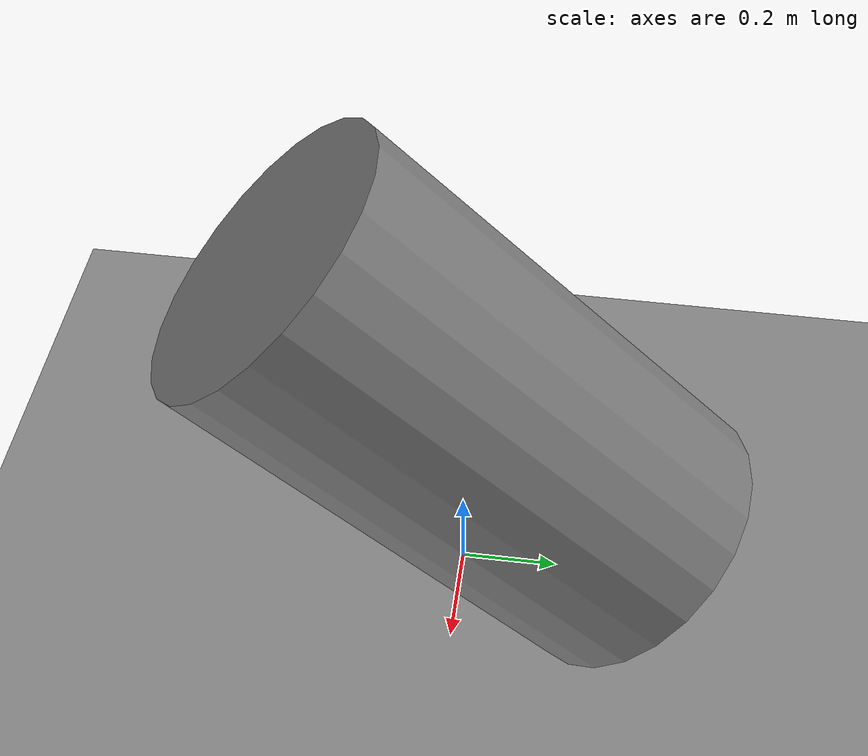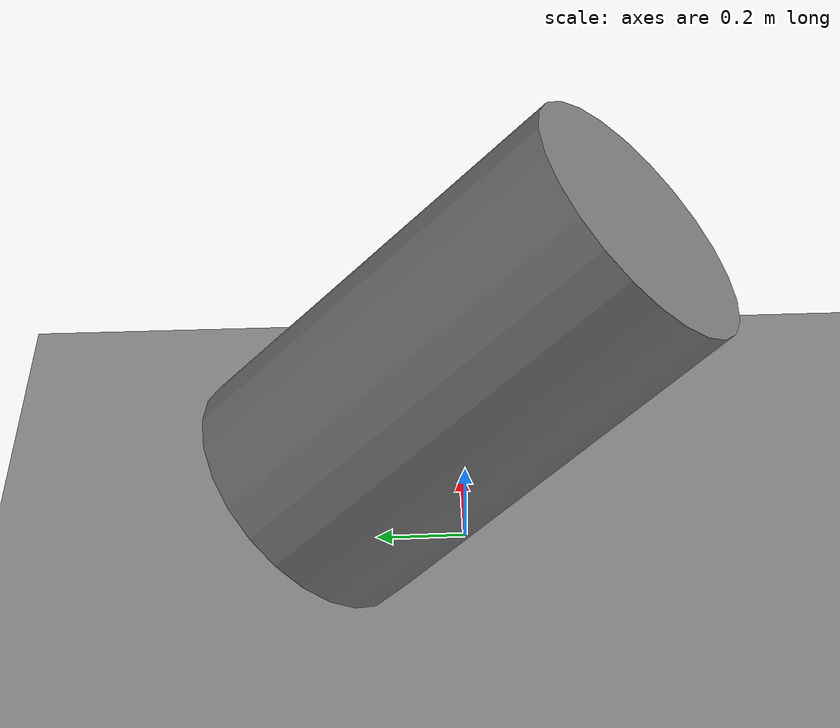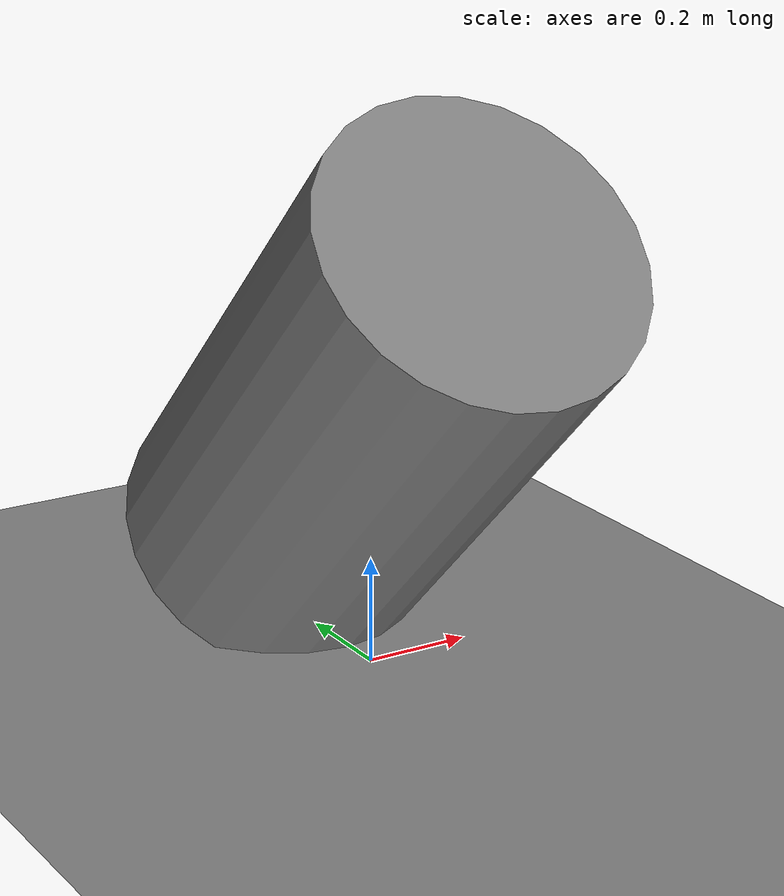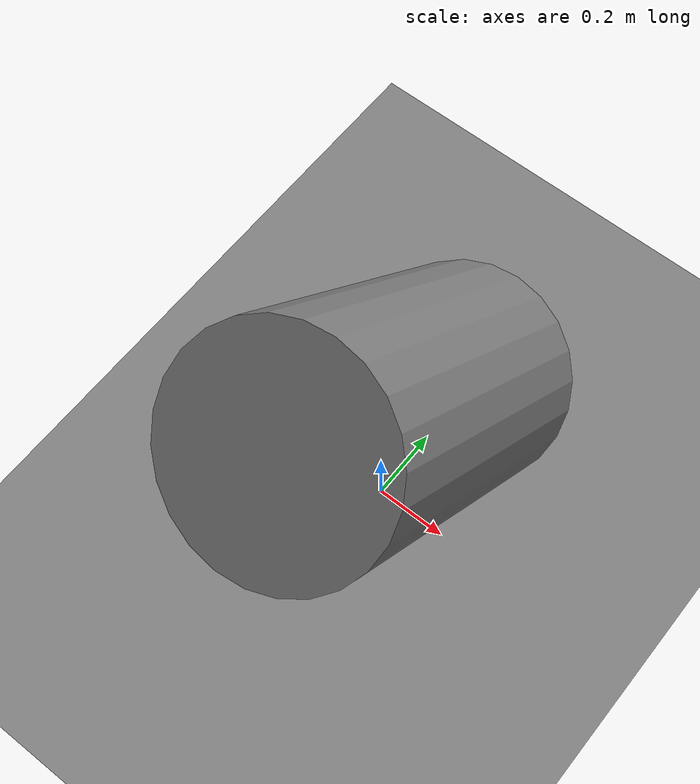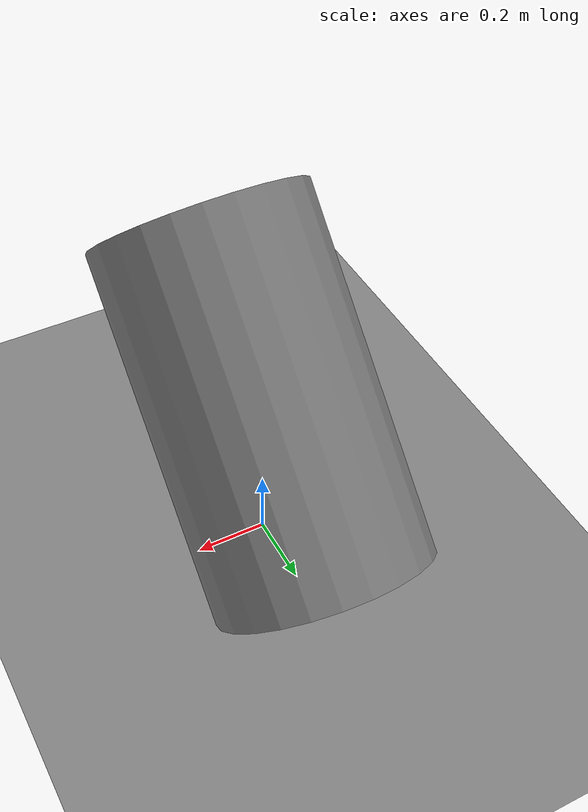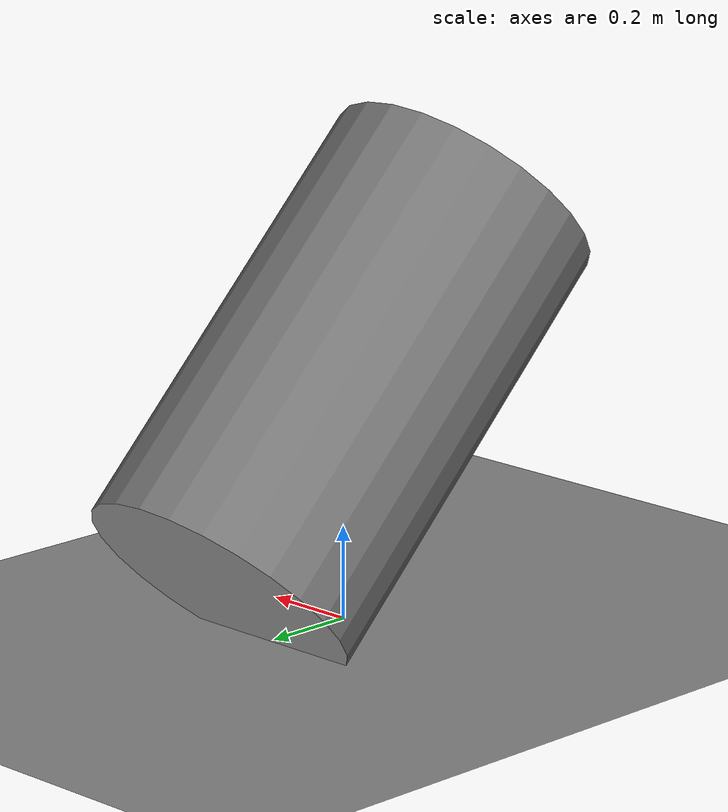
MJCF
<mujoco model="cylinder_plane_tilted_1">
            <option gravity="0 0 0" timestep="0.001"/>
            <worldbody>
                <geom name="floor" type="plane" size="10 10 0.1"/>
                <body name="cyl" pos="0 0 0.5" euler="45 0 0">
                    <joint type="free"/>
                    <geom type="cylinder" size="0.3 0.5"/>
                </body>
            </worldbody>
        </mujoco>
